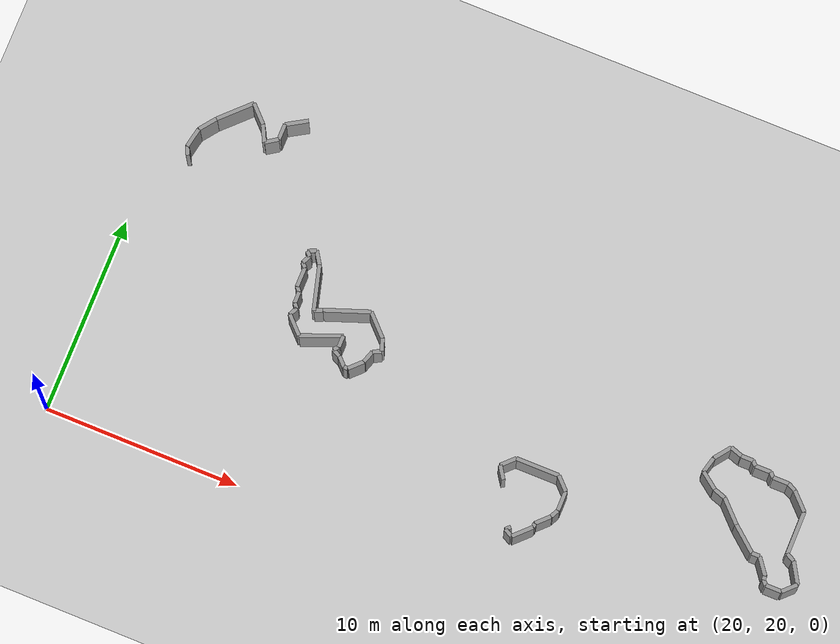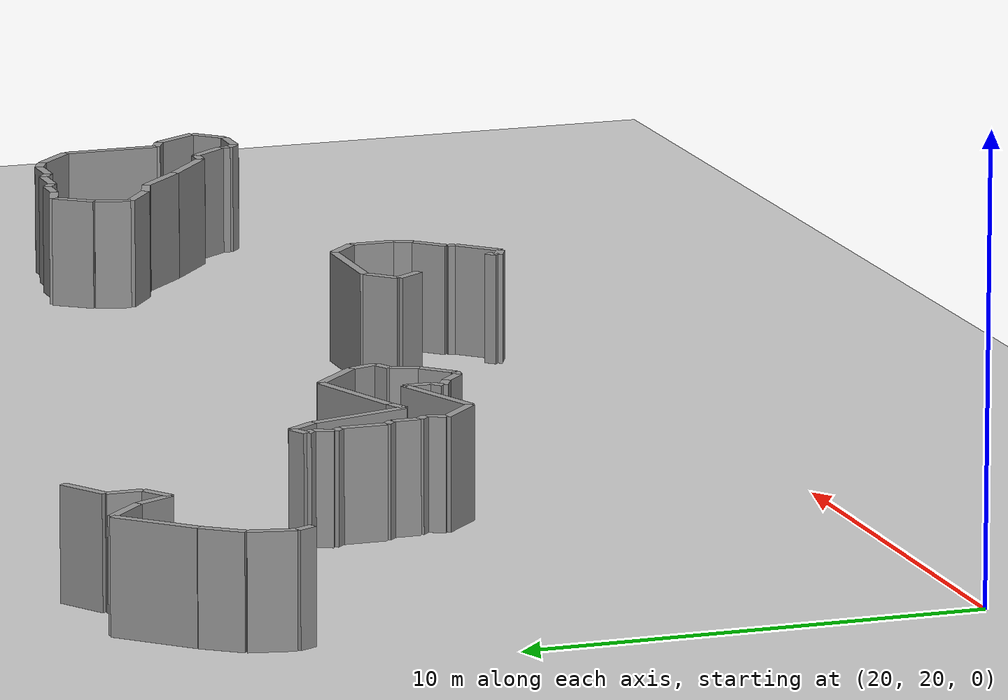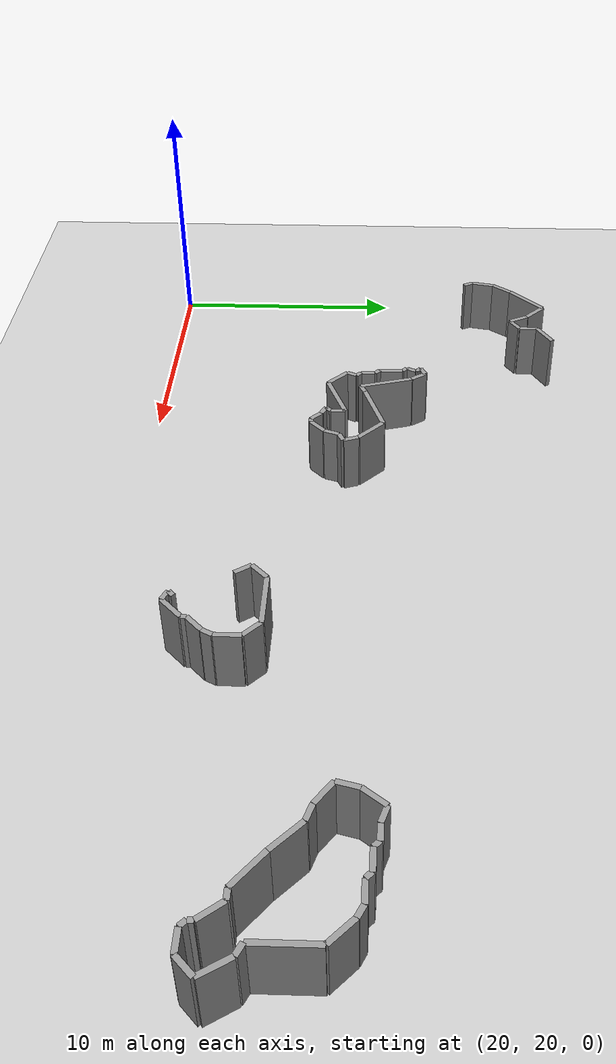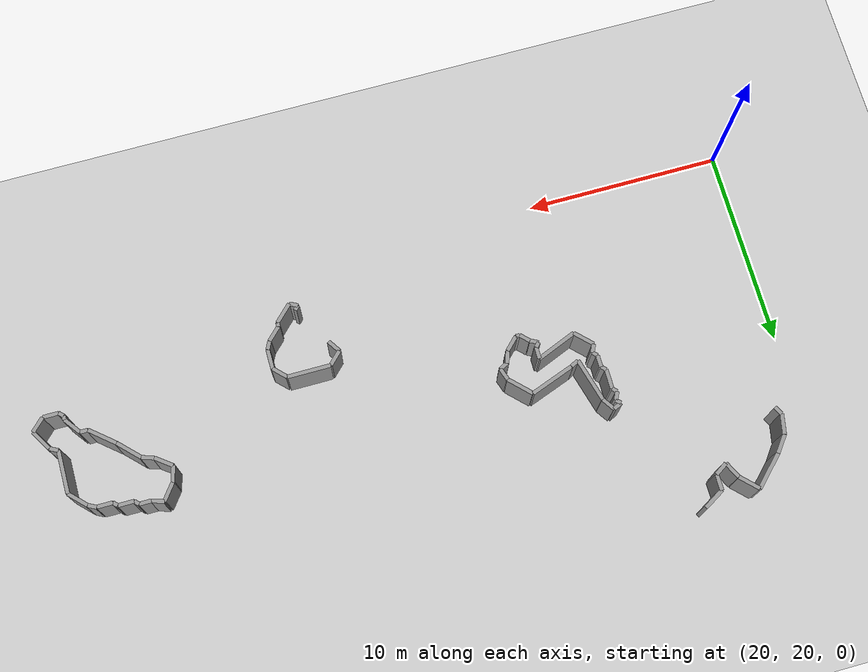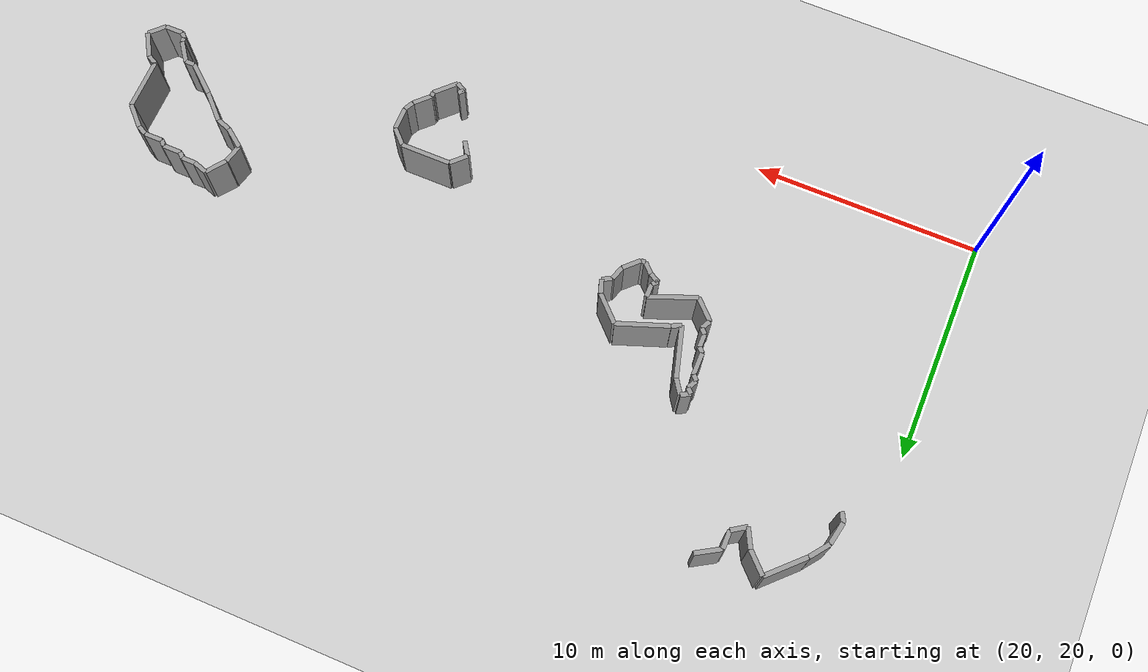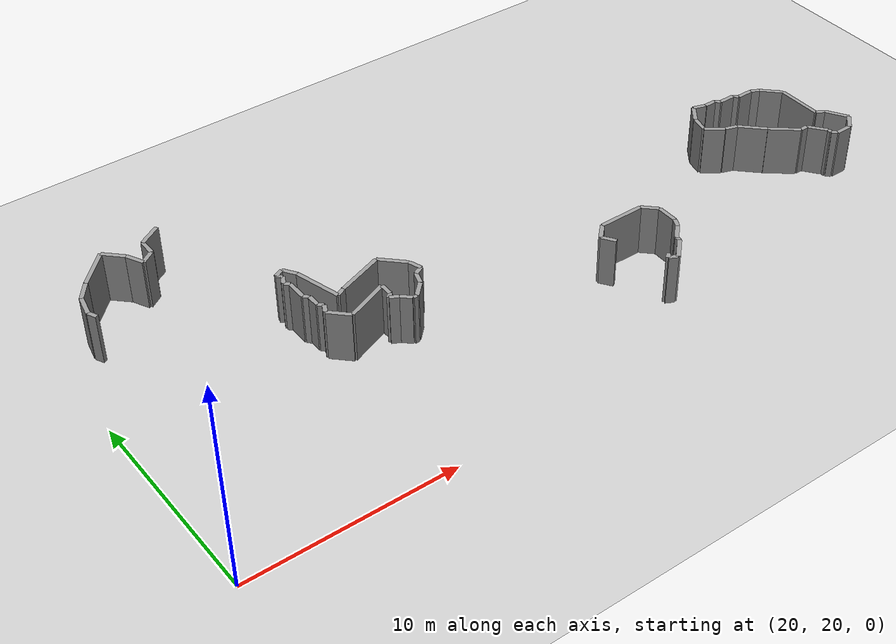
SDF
<sdf version="1.4">
 <world name="1_wall">
  <model name="ground_plane">
   <static>1</static>
   <link name="link">
    <collision name="collision">
     <geometry><plane><normal>0 0 1</normal><size>1000 1000</size></plane></geometry>
     <surface><friction><ode><mu>100</mu><mu2>50</mu2></ode></friction></surface>
    </collision>
    <visual name="visual">
     <cast_shadows>0</cast_shadows>
     <geometry><plane><normal>0 0 1</normal><size>10000 10000</size></plane></geometry>
     <material>
      <script><uri>file://media/materials/scripts/gazebo.material</uri><name>Gazebo/Grey</name></script>
     </material>
    </visual>
    <velocity_decay><linear>0</linear><angular>0</angular></velocity_decay>
   </link>
  </model>
  <model name="Wall_689">
   <static>1</static>
   <link name="Wall_689">
    <collision name="Wall_Collision_689">
     <geometry><box><size>1.16619037897 0.2 2.5</size></box></geometry>
     <pose>0 0 1.25 0 -0 0</pose>
    </collision>
    <visual name="Wall_Visual_689">
     <pose>0 0 1.25 0 -0 0</pose>
     <geometry><box><size>1.16619037897 0.2 2.5</size></box></geometry>
     <material>
      <script><uri>file://media/materials/scripts/gazebo.material</uri><name>Gazebo/Grey</name></script>
     </material>
    </visual>
    <velocity_decay><linear>0</linear><angular>0</angular></velocity_decay>
    <pose>26.1 37.3 0 0 0 -2.60117315332</pose>
   </link>
  </model>
  <model name="Wall_690">
   <static>1</static>
   <link name="Wall_690">
    <collision name="Wall_Collision_690">
     <geometry><box><size>0.8 0.2 2.5</size></box></geometry>
     <pose>0 0 1.25 0 -0 0</pose>
    </collision>
    <visual name="Wall_Visual_690">
     <pose>0 0 1.25 0 -0 0</pose>
     <geometry><box><size>0.8 0.2 2.5</size></box></geometry>
     <material>
      <script><uri>file://media/materials/scripts/gazebo.material</uri><name>Gazebo/Grey</name></script>
     </material>
    </visual>
    <velocity_decay><linear>0</linear><angular>0</angular></velocity_decay>
    <pose>25.6 36.6 0 0 0 -1.57079632679</pose>
   </link>
  </model>
  <model name="Wall_691">
   <static>1</static>
   <link name="Wall_691">
    <collision name="Wall_Collision_691">
     <geometry><box><size>0.721110255093 0.2 2.5</size></box></geometry>
     <pose>0 0 1.25 0 -0 0</pose>
    </collision>
    <visual name="Wall_Visual_691">
     <pose>0 0 1.25 0 -0 0</pose>
     <geometry><box><size>0.721110255093 0.2 2.5</size></box></geometry>
     <material>
      <script><uri>file://media/materials/scripts/gazebo.material</uri><name>Gazebo/Grey</name></script>
     </material>
    </visual>
    <velocity_decay><linear>0</linear><angular>0</angular></velocity_decay>
    <pose>25.3 36.0 0 0 0 -2.55359005004</pose>
   </link>
  </model>
  <model name="Wall_692">
   <static>1</static>
   <link name="Wall_692">
    <collision name="Wall_Collision_692">
     <geometry><box><size>0.894427191 0.2 2.5</size></box></geometry>
     <pose>0 0 1.25 0 -0 0</pose>
    </collision>
    <visual name="Wall_Visual_692">
     <pose>0 0 1.25 0 -0 0</pose>
     <geometry><box><size>0.894427191 0.2 2.5</size></box></geometry>
     <material>
      <script><uri>file://media/materials/scripts/gazebo.material</uri><name>Gazebo/Grey</name></script>
     </material>
    </visual>
    <velocity_decay><linear>0</linear><angular>0</angular></velocity_decay>
    <pose>24.8 36.2 0 0 0 2.0344439358</pose>
   </link>
  </model>
  <model name="Wall_693">
   <static>1</static>
   <link name="Wall_693">
    <collision name="Wall_Collision_693">
     <geometry><box><size>1.1313708499 0.2 2.5</size></box></geometry>
     <pose>0 0 1.25 0 -0 0</pose>
    </collision>
    <visual name="Wall_Visual_693">
     <pose>0 0 1.25 0 -0 0</pose>
     <geometry><box><size>1.1313708499 0.2 2.5</size></box></geometry>
     <material>
      <script><uri>file://media/materials/scripts/gazebo.material</uri><name>Gazebo/Grey</name></script>
     </material>
    </visual>
    <velocity_decay><linear>0</linear><angular>0</angular></velocity_decay>
    <pose>24.2 37.0 0 0 0 2.35619449019</pose>
   </link>
  </model>
  <model name="Wall_694">
   <static>1</static>
   <link name="Wall_694">
    <collision name="Wall_Collision_694">
     <geometry><box><size>1.97989898732 0.2 2.5</size></box></geometry>
     <pose>0 0 1.25 0 -0 0</pose>
    </collision>
    <visual name="Wall_Visual_694">
     <pose>0 0 1.25 0 -0 0</pose>
     <geometry><box><size>1.97989898732 0.2 2.5</size></box></geometry>
     <material>
      <script><uri>file://media/materials/scripts/gazebo.material</uri><name>Gazebo/Grey</name></script>
     </material>
    </visual>
    <velocity_decay><linear>0</linear><angular>0</angular></velocity_decay>
    <pose>23.1 36.7 0 0 0 -2.35619449019</pose>
   </link>
  </model>
  <model name="Wall_695">
   <static>1</static>
   <link name="Wall_695">
    <collision name="Wall_Collision_695">
     <geometry><box><size>1.0 0.2 2.5</size></box></geometry>
     <pose>0 0 1.25 0 -0 0</pose>
    </collision>
    <visual name="Wall_Visual_695">
     <pose>0 0 1.25 0 -0 0</pose>
     <geometry><box><size>1.0 0.2 2.5</size></box></geometry>
     <material>
      <script><uri>file://media/materials/scripts/gazebo.material</uri><name>Gazebo/Grey</name></script>
     </material>
    </visual>
    <velocity_decay><linear>0</linear><angular>0</angular></velocity_decay>
    <pose>22.1 35.6 0 0 0 -2.21429743559</pose>
   </link>
  </model>
  <model name="Wall_696">
   <static>1</static>
   <link name="Wall_696">
    <collision name="Wall_Collision_696">
     <geometry><box><size>1.01980390272 0.2 2.5</size></box></geometry>
     <pose>0 0 1.25 0 -0 0</pose>
    </collision>
    <visual name="Wall_Visual_696">
     <pose>0 0 1.25 0 -0 0</pose>
     <geometry><box><size>1.01980390272 0.2 2.5</size></box></geometry>
     <material>
      <script><uri>file://media/materials/scripts/gazebo.material</uri><name>Gazebo/Grey</name></script>
     </material>
    </visual>
    <velocity_decay><linear>0</linear><angular>0</angular></velocity_decay>
    <pose>21.7 34.7 0 0 0 -1.76819188664</pose>
   </link>
  </model>
  <model name="Wall_697">
   <static>1</static>
   <link name="Wall_697">
    <collision name="Wall_Collision_697">
     <geometry><box><size>0.4472135955 0.2 2.5</size></box></geometry>
     <pose>0 0 1.25 0 -0 0</pose>
    </collision>
    <visual name="Wall_Visual_697">
     <pose>0 0 1.25 0 -0 0</pose>
     <geometry><box><size>0.4472135955 0.2 2.5</size></box></geometry>
     <material>
      <script><uri>file://media/materials/scripts/gazebo.material</uri><name>Gazebo/Grey</name></script>
     </material>
    </visual>
    <velocity_decay><linear>0</linear><angular>0</angular></velocity_decay>
    <pose>21.7 34.0 0 0 0 -1.10714871779</pose>
   </link>
  </model>
  <model name="Wall_698">
   <static>1</static>
   <link name="Wall_698">
    <collision name="Wall_Collision_698">
     <geometry><box><size>0.565685424949 0.2 2.5</size></box></geometry>
     <pose>0 0 1.25 0 -0 0</pose>
    </collision>
    <visual name="Wall_Visual_698">
     <pose>0 0 1.25 0 -0 0</pose>
     <geometry><box><size>0.565685424949 0.2 2.5</size></box></geometry>
     <material>
      <script><uri>file://media/materials/scripts/gazebo.material</uri><name>Gazebo/Grey</name></script>
     </material>
    </visual>
    <velocity_decay><linear>0</linear><angular>0</angular></velocity_decay>
    <pose>32.6 27.2 0 0 0 -0.785398163397</pose>
   </link>
  </model>
  <model name="Wall_699">
   <static>1</static>
   <link name="Wall_699">
    <collision name="Wall_Collision_699">
     <geometry><box><size>0.2 0.2 2.5</size></box></geometry>
     <pose>0 0 1.25 0 -0 0</pose>
    </collision>
    <visual name="Wall_Visual_699">
     <pose>0 0 1.25 0 -0 0</pose>
     <geometry><box><size>0.2 0.2 2.5</size></box></geometry>
     <material>
      <script><uri>file://media/materials/scripts/gazebo.material</uri><name>Gazebo/Grey</name></script>
     </material>
    </visual>
    <velocity_decay><linear>0</linear><angular>0</angular></velocity_decay>
    <pose>32.9 27.0 0 0 0 0.0</pose>
   </link>
  </model>
  <model name="Wall_700">
   <static>1</static>
   <link name="Wall_700">
    <collision name="Wall_Collision_700">
     <geometry><box><size>0.848528137424 0.2 2.5</size></box></geometry>
     <pose>0 0 1.25 0 -0 0</pose>
    </collision>
    <visual name="Wall_Visual_700">
     <pose>0 0 1.25 0 -0 0</pose>
     <geometry><box><size>0.848528137424 0.2 2.5</size></box></geometry>
     <material>
      <script><uri>file://media/materials/scripts/gazebo.material</uri><name>Gazebo/Grey</name></script>
     </material>
    </visual>
    <velocity_decay><linear>0</linear><angular>0</angular></velocity_decay>
    <pose>33.3 27.3 0 0 0 0.785398163397</pose>
   </link>
  </model>
  <model name="Wall_701">
   <static>1</static>
   <link name="Wall_701">
    <collision name="Wall_Collision_701">
     <geometry><box><size>0.632455532034 0.2 2.5</size></box></geometry>
     <pose>0 0 1.25 0 -0 0</pose>
    </collision>
    <visual name="Wall_Visual_701">
     <pose>0 0 1.25 0 -0 0</pose>
     <geometry><box><size>0.632455532034 0.2 2.5</size></box></geometry>
     <material>
      <script><uri>file://media/materials/scripts/gazebo.material</uri><name>Gazebo/Grey</name></script>
     </material>
    </visual>
    <velocity_decay><linear>0</linear><angular>0</angular></velocity_decay>
    <pose>33.7 27.9 0 0 0 1.2490457724</pose>
   </link>
  </model>
  <model name="Wall_702">
   <static>1</static>
   <link name="Wall_702">
    <collision name="Wall_Collision_702">
     <geometry><box><size>0.4472135955 0.2 2.5</size></box></geometry>
     <pose>0 0 1.25 0 -0 0</pose>
    </collision>
    <visual name="Wall_Visual_702">
     <pose>0 0 1.25 0 -0 0</pose>
     <geometry><box><size>0.4472135955 0.2 2.5</size></box></geometry>
     <material>
      <script><uri>file://media/materials/scripts/gazebo.material</uri><name>Gazebo/Grey</name></script>
     </material>
    </visual>
    <velocity_decay><linear>0</linear><angular>0</angular></velocity_decay>
    <pose>34.0 28.3 0 0 0 0.463647609001</pose>
   </link>
  </model>
  <model name="Wall_703">
   <static>1</static>
   <link name="Wall_703">
    <collision name="Wall_Collision_703">
     <geometry><box><size>0.632455532034 0.2 2.5</size></box></geometry>
     <pose>0 0 1.25 0 -0 0</pose>
    </collision>
    <visual name="Wall_Visual_703">
     <pose>0 0 1.25 0 -0 0</pose>
     <geometry><box><size>0.632455532034 0.2 2.5</size></box></geometry>
     <material>
      <script><uri>file://media/materials/scripts/gazebo.material</uri><name>Gazebo/Grey</name></script>
     </material>
    </visual>
    <velocity_decay><linear>0</linear><angular>0</angular></velocity_decay>
    <pose>34.1 28.7 0 0 0 1.89254688119</pose>
   </link>
  </model>
  <model name="Wall_704">
   <static>1</static>
   <link name="Wall_704">
    <collision name="Wall_Collision_704">
     <geometry><box><size>1.41421356237 0.2 2.5</size></box></geometry>
     <pose>0 0 1.25 0 -0 0</pose>
    </collision>
    <visual name="Wall_Visual_704">
     <pose>0 0 1.25 0 -0 0</pose>
     <geometry><box><size>1.41421356237 0.2 2.5</size></box></geometry>
     <material>
      <script><uri>file://media/materials/scripts/gazebo.material</uri><name>Gazebo/Grey</name></script>
     </material>
    </visual>
    <velocity_decay><linear>0</linear><angular>0</angular></velocity_decay>
    <pose>33.5 29.5 0 0 0 2.35619449019</pose>
   </link>
  </model>
  <model name="Wall_705">
   <static>1</static>
   <link name="Wall_705">
    <collision name="Wall_Collision_705">
     <geometry><box><size>2.34093998214 0.2 2.5</size></box></geometry>
     <pose>0 0 1.25 0 -0 0</pose>
    </collision>
    <visual name="Wall_Visual_705">
     <pose>0 0 1.25 0 -0 0</pose>
     <geometry><box><size>2.34093998214 0.2 2.5</size></box></geometry>
     <material>
      <script><uri>file://media/materials/scripts/gazebo.material</uri><name>Gazebo/Grey</name></script>
     </material>
    </visual>
    <velocity_decay><linear>0</linear><angular>0</angular></velocity_decay>
    <pose>31.9 29.6 0 0 0 -2.79282165001</pose>
   </link>
  </model>
  <model name="Wall_706">
   <static>1</static>
   <link name="Wall_706">
    <collision name="Wall_Collision_706">
     <geometry><box><size>0.4472135955 0.2 2.5</size></box></geometry>
     <pose>0 0 1.25 0 -0 0</pose>
    </collision>
    <visual name="Wall_Visual_706">
     <pose>0 0 1.25 0 -0 0</pose>
     <geometry><box><size>0.4472135955 0.2 2.5</size></box></geometry>
     <material>
      <script><uri>file://media/materials/scripts/gazebo.material</uri><name>Gazebo/Grey</name></script>
     </material>
    </visual>
    <velocity_decay><linear>0</linear><angular>0</angular></velocity_decay>
    <pose>30.6 29.1 0 0 0 -2.67794504459</pose>
   </link>
  </model>
  <model name="Wall_707">
   <static>1</static>
   <link name="Wall_707">
    <collision name="Wall_Collision_707">
     <geometry><box><size>2.2803508502 0.2 2.5</size></box></geometry>
     <pose>0 0 1.25 0 -0 0</pose>
    </collision>
    <visual name="Wall_Visual_707">
     <pose>0 0 1.25 0 -0 0</pose>
     <geometry><box><size>2.2803508502 0.2 2.5</size></box></geometry>
     <material>
      <script><uri>file://media/materials/scripts/gazebo.material</uri><name>Gazebo/Grey</name></script>
     </material>
    </visual>
    <velocity_decay><linear>0</linear><angular>0</angular></velocity_decay>
    <pose>30.1 30.1 0 0 0 1.83704837595</pose>
   </link>
  </model>
  <model name="Wall_708">
   <static>1</static>
   <link name="Wall_708">
    <collision name="Wall_Collision_708">
     <geometry><box><size>0.721110255093 0.2 2.5</size></box></geometry>
     <pose>0 0 1.25 0 -0 0</pose>
    </collision>
    <visual name="Wall_Visual_708">
     <pose>0 0 1.25 0 -0 0</pose>
     <geometry><box><size>0.721110255093 0.2 2.5</size></box></geometry>
     <material>
      <script><uri>file://media/materials/scripts/gazebo.material</uri><name>Gazebo/Grey</name></script>
     </material>
    </visual>
    <velocity_decay><linear>0</linear><angular>0</angular></velocity_decay>
    <pose>29.6 31.5 0 0 0 2.15879893034</pose>
   </link>
  </model>
  <model name="Wall_709">
   <static>1</static>
   <link name="Wall_709">
    <collision name="Wall_Collision_709">
     <geometry><box><size>0.4472135955 0.2 2.5</size></box></geometry>
     <pose>0 0 1.25 0 -0 0</pose>
    </collision>
    <visual name="Wall_Visual_709">
     <pose>0 0 1.25 0 -0 0</pose>
     <geometry><box><size>0.4472135955 0.2 2.5</size></box></geometry>
     <material>
      <script><uri>file://media/materials/scripts/gazebo.material</uri><name>Gazebo/Grey</name></script>
     </material>
    </visual>
    <velocity_decay><linear>0</linear><angular>0</angular></velocity_decay>
    <pose>29.2 31.7 0 0 0 -2.67794504459</pose>
   </link>
  </model>
  <model name="Wall_710">
   <static>1</static>
   <link name="Wall_710">
    <collision name="Wall_Collision_710">
     <geometry><box><size>0.282842712475 0.2 2.5</size></box></geometry>
     <pose>0 0 1.25 0 -0 0</pose>
    </collision>
    <visual name="Wall_Visual_710">
     <pose>0 0 1.25 0 -0 0</pose>
     <geometry><box><size>0.282842712475 0.2 2.5</size></box></geometry>
     <material>
      <script><uri>file://media/materials/scripts/gazebo.material</uri><name>Gazebo/Grey</name></script>
     </material>
    </visual>
    <velocity_decay><linear>0</linear><angular>0</angular></velocity_decay>
    <pose>29.1 31.5 0 0 0 -0.785398163397</pose>
   </link>
  </model>
  <model name="Wall_711">
   <static>1</static>
   <link name="Wall_711">
    <collision name="Wall_Collision_711">
     <geometry><box><size>0.4472135955 0.2 2.5</size></box></geometry>
     <pose>0 0 1.25 0 -0 0</pose>
    </collision>
    <visual name="Wall_Visual_711">
     <pose>0 0 1.25 0 -0 0</pose>
     <geometry><box><size>0.4472135955 0.2 2.5</size></box></geometry>
     <material>
      <script><uri>file://media/materials/scripts/gazebo.material</uri><name>Gazebo/Grey</name></script>
     </material>
    </visual>
    <velocity_decay><linear>0</linear><angular>0</angular></velocity_decay>
    <pose>29.1 31.2 0 0 0 -2.0344439358</pose>
   </link>
  </model>
  <model name="Wall_712">
   <static>1</static>
   <link name="Wall_712">
    <collision name="Wall_Collision_712">
     <geometry><box><size>0.282842712475 0.2 2.5</size></box></geometry>
     <pose>0 0 1.25 0 -0 0</pose>
    </collision>
    <visual name="Wall_Visual_712">
     <pose>0 0 1.25 0 -0 0</pose>
     <geometry><box><size>0.282842712475 0.2 2.5</size></box></geometry>
     <material>
      <script><uri>file://media/materials/scripts/gazebo.material</uri><name>Gazebo/Grey</name></script>
     </material>
    </visual>
    <velocity_decay><linear>0</linear><angular>0</angular></velocity_decay>
    <pose>29.1 30.9 0 0 0 -0.785398163397</pose>
   </link>
  </model>
  <model name="Wall_713">
   <static>1</static>
   <link name="Wall_713">
    <collision name="Wall_Collision_713">
     <geometry><box><size>1.0 0.2 2.5</size></box></geometry>
     <pose>0 0 1.25 0 -0 0</pose>
    </collision>
    <visual name="Wall_Visual_713">
     <pose>0 0 1.25 0 -0 0</pose>
     <geometry><box><size>1.0 0.2 2.5</size></box></geometry>
     <material>
      <script><uri>file://media/materials/scripts/gazebo.material</uri><name>Gazebo/Grey</name></script>
     </material>
    </visual>
    <velocity_decay><linear>0</linear><angular>0</angular></velocity_decay>
    <pose>29.2 30.3 0 0 0 -1.57079632679</pose>
   </link>
  </model>
  <model name="Wall_714">
   <static>1</static>
   <link name="Wall_714">
    <collision name="Wall_Collision_714">
     <geometry><box><size>0.282842712475 0.2 2.5</size></box></geometry>
     <pose>0 0 1.25 0 -0 0</pose>
    </collision>
    <visual name="Wall_Visual_714">
     <pose>0 0 1.25 0 -0 0</pose>
     <geometry><box><size>0.282842712475 0.2 2.5</size></box></geometry>
     <material>
      <script><uri>file://media/materials/scripts/gazebo.material</uri><name>Gazebo/Grey</name></script>
     </material>
    </visual>
    <velocity_decay><linear>0</linear><angular>0</angular></velocity_decay>
    <pose>29.3 29.7 0 0 0 -0.785398163397</pose>
   </link>
  </model>
  <model name="Wall_715">
   <static>1</static>
   <link name="Wall_715">
    <collision name="Wall_Collision_715">
     <geometry><box><size>0.6 0.2 2.5</size></box></geometry>
     <pose>0 0 1.25 0 -0 0</pose>
    </collision>
    <visual name="Wall_Visual_715">
     <pose>0 0 1.25 0 -0 0</pose>
     <geometry><box><size>0.6 0.2 2.5</size></box></geometry>
     <material>
      <script><uri>file://media/materials/scripts/gazebo.material</uri><name>Gazebo/Grey</name></script>
     </material>
    </visual>
    <velocity_decay><linear>0</linear><angular>0</angular></velocity_decay>
    <pose>29.4 29.3 0 0 0 -1.57079632679</pose>
   </link>
  </model>
  <model name="Wall_716">
   <static>1</static>
   <link name="Wall_716">
    <collision name="Wall_Collision_716">
     <geometry><box><size>0.282842712475 0.2 2.5</size></box></geometry>
     <pose>0 0 1.25 0 -0 0</pose>
    </collision>
    <visual name="Wall_Visual_716">
     <pose>0 0 1.25 0 -0 0</pose>
     <geometry><box><size>0.282842712475 0.2 2.5</size></box></geometry>
     <material>
      <script><uri>file://media/materials/scripts/gazebo.material</uri><name>Gazebo/Grey</name></script>
     </material>
    </visual>
    <velocity_decay><linear>0</linear><angular>0</angular></velocity_decay>
    <pose>29.5 28.9 0 0 0 -0.785398163397</pose>
   </link>
  </model>
  <model name="Wall_717">
   <static>1</static>
   <link name="Wall_717">
    <collision name="Wall_Collision_717">
     <geometry><box><size>0.4472135955 0.2 2.5</size></box></geometry>
     <pose>0 0 1.25 0 -0 0</pose>
    </collision>
    <visual name="Wall_Visual_717">
     <pose>0 0 1.25 0 -0 0</pose>
     <geometry><box><size>0.4472135955 0.2 2.5</size></box></geometry>
     <material>
      <script><uri>file://media/materials/scripts/gazebo.material</uri><name>Gazebo/Grey</name></script>
     </material>
    </visual>
    <velocity_decay><linear>0</linear><angular>0</angular></velocity_decay>
    <pose>29.5 28.6 0 0 0 -2.0344439358</pose>
   </link>
  </model>
  <model name="Wall_718">
   <static>1</static>
   <link name="Wall_718">
    <collision name="Wall_Collision_718">
     <geometry><box><size>1.1313708499 0.2 2.5</size></box></geometry>
     <pose>0 0 1.25 0 -0 0</pose>
    </collision>
    <visual name="Wall_Visual_718">
     <pose>0 0 1.25 0 -0 0</pose>
     <geometry><box><size>1.1313708499 0.2 2.5</size></box></geometry>
     <material>
      <script><uri>file://media/materials/scripts/gazebo.material</uri><name>Gazebo/Grey</name></script>
     </material>
    </visual>
    <velocity_decay><linear>0</linear><angular>0</angular></velocity_decay>
    <pose>29.8 28.0 0 0 0 -0.785398163397</pose>
   </link>
  </model>
  <model name="Wall_719">
   <static>1</static>
   <link name="Wall_719">
    <collision name="Wall_Collision_719">
     <geometry><box><size>2.15406592285 0.2 2.5</size></box></geometry>
     <pose>0 0 1.25 0 -0 0</pose>
    </collision>
    <visual name="Wall_Visual_719">
     <pose>0 0 1.25 0 -0 0</pose>
     <geometry><box><size>2.15406592285 0.2 2.5</size></box></geometry>
     <material>
      <script><uri>file://media/materials/scripts/gazebo.material</uri><name>Gazebo/Grey</name></script>
     </material>
    </visual>
    <velocity_decay><linear>0</linear><angular>0</angular></velocity_decay>
    <pose>31.2 28.0 0 0 0 0.380506377112</pose>
   </link>
  </model>
  <model name="Wall_720">
   <static>1</static>
   <link name="Wall_720">
    <collision name="Wall_Collision_720">
     <geometry><box><size>0.6 0.2 2.5</size></box></geometry>
     <pose>0 0 1.25 0 -0 0</pose>
    </collision>
    <visual name="Wall_Visual_720">
     <pose>0 0 1.25 0 -0 0</pose>
     <geometry><box><size>0.6 0.2 2.5</size></box></geometry>
     <material>
      <script><uri>file://media/materials/scripts/gazebo.material</uri><name>Gazebo/Grey</name></script>
     </material>
    </visual>
    <velocity_decay><linear>0</linear><angular>0</angular></velocity_decay>
    <pose>32.2 28.1 0 0 0 -1.57079632679</pose>
   </link>
  </model>
  <model name="Wall_721">
   <static>1</static>
   <link name="Wall_721">
    <collision name="Wall_Collision_721">
     <geometry><box><size>0.282842712475 0.2 2.5</size></box></geometry>
     <pose>0 0 1.25 0 -0 0</pose>
    </collision>
    <visual name="Wall_Visual_721">
     <pose>0 0 1.25 0 -0 0</pose>
     <geometry><box><size>0.282842712475 0.2 2.5</size></box></geometry>
     <material>
      <script><uri>file://media/materials/scripts/gazebo.material</uri><name>Gazebo/Grey</name></script>
     </material>
    </visual>
    <velocity_decay><linear>0</linear><angular>0</angular></velocity_decay>
    <pose>32.1 27.7 0 0 0 -2.35619449019</pose>
   </link>
  </model>
  <model name="Wall_722">
   <static>1</static>
   <link name="Wall_722">
    <collision name="Wall_Collision_722">
     <geometry><box><size>0.4472135955 0.2 2.5</size></box></geometry>
     <pose>0 0 1.25 0 -0 0</pose>
    </collision>
    <visual name="Wall_Visual_722">
     <pose>0 0 1.25 0 -0 0</pose>
     <geometry><box><size>0.4472135955 0.2 2.5</size></box></geometry>
     <material>
      <script><uri>file://media/materials/scripts/gazebo.material</uri><name>Gazebo/Grey</name></script>
     </material>
    </visual>
    <velocity_decay><linear>0</linear><angular>0</angular></velocity_decay>
    <pose>32.2 27.5 0 0 0 -0.463647609001</pose>
   </link>
  </model>
  <model name="Wall_723">
   <static>1</static>
   <link name="Wall_723">
    <collision name="Wall_Collision_723">
     <geometry><box><size>0.2 0.2 2.5</size></box></geometry>
     <pose>0 0 1.25 0 -0 0</pose>
    </collision>
    <visual name="Wall_Visual_723">
     <pose>0 0 1.25 0 -0 0</pose>
     <geometry><box><size>0.2 0.2 2.5</size></box></geometry>
     <material>
      <script><uri>file://media/materials/scripts/gazebo.material</uri><name>Gazebo/Grey</name></script>
     </material>
    </visual>
    <velocity_decay><linear>0</linear><angular>0</angular></velocity_decay>
    <pose>55.4 25.1 0 0 0 -1.57079632679</pose>
   </link>
  </model>
  <model name="Wall_724">
   <static>1</static>
   <link name="Wall_724">
    <collision name="Wall_Collision_724">
     <geometry><box><size>0.282842712475 0.2 2.5</size></box></geometry>
     <pose>0 0 1.25 0 -0 0</pose>
    </collision>
    <visual name="Wall_Visual_724">
     <pose>0 0 1.25 0 -0 0</pose>
     <geometry><box><size>0.282842712475 0.2 2.5</size></box></geometry>
     <material>
      <script><uri>file://media/materials/scripts/gazebo.material</uri><name>Gazebo/Grey</name></script>
     </material>
    </visual>
    <velocity_decay><linear>0</linear><angular>0</angular></velocity_decay>
    <pose>55.5 24.9 0 0 0 -0.785398163397</pose>
   </link>
  </model>
  <model name="Wall_725">
   <static>1</static>
   <link name="Wall_725">
    <collision name="Wall_Collision_725">
     <geometry><box><size>0.8 0.2 2.5</size></box></geometry>
     <pose>0 0 1.25 0 -0 0</pose>
    </collision>
    <visual name="Wall_Visual_725">
     <pose>0 0 1.25 0 -0 0</pose>
     <geometry><box><size>0.8 0.2 2.5</size></box></geometry>
     <material>
      <script><uri>file://media/materials/scripts/gazebo.material</uri><name>Gazebo/Grey</name></script>
     </material>
    </visual>
    <velocity_decay><linear>0</linear><angular>0</angular></velocity_decay>
    <pose>56.0 24.8 0 0 0 0.0</pose>
   </link>
  </model>
  <model name="Wall_726">
   <static>1</static>
   <link name="Wall_726">
    <collision name="Wall_Collision_726">
     <geometry><box><size>0.848528137424 0.2 2.5</size></box></geometry>
     <pose>0 0 1.25 0 -0 0</pose>
    </collision>
    <visual name="Wall_Visual_726">
     <pose>0 0 1.25 0 -0 0</pose>
     <geometry><box><size>0.848528137424 0.2 2.5</size></box></geometry>
     <material>
      <script><uri>file://media/materials/scripts/gazebo.material</uri><name>Gazebo/Grey</name></script>
     </material>
    </visual>
    <velocity_decay><linear>0</linear><angular>0</angular></velocity_decay>
    <pose>56.7 25.1 0 0 0 0.785398163397</pose>
   </link>
  </model>
  <model name="Wall_727">
   <static>1</static>
   <link name="Wall_727">
    <collision name="Wall_Collision_727">
     <geometry><box><size>1.16619037897 0.2 2.5</size></box></geometry>
     <pose>0 0 1.25 0 -0 0</pose>
    </collision>
    <visual name="Wall_Visual_727">
     <pose>0 0 1.25 0 -0 0</pose>
     <geometry><box><size>1.16619037897 0.2 2.5</size></box></geometry>
     <material>
      <script><uri>file://media/materials/scripts/gazebo.material</uri><name>Gazebo/Grey</name></script>
     </material>
    </visual>
    <velocity_decay><linear>0</linear><angular>0</angular></velocity_decay>
    <pose>56.7 25.9 0 0 0 2.11121582707</pose>
   </link>
  </model>
  <model name="Wall_728">
   <static>1</static>
   <link name="Wall_728">
    <collision name="Wall_Collision_728">
     <geometry><box><size>0.4472135955 0.2 2.5</size></box></geometry>
     <pose>0 0 1.25 0 -0 0</pose>
    </collision>
    <visual name="Wall_Visual_728">
     <pose>0 0 1.25 0 -0 0</pose>
     <geometry><box><size>0.4472135955 0.2 2.5</size></box></geometry>
     <material>
      <script><uri>file://media/materials/scripts/gazebo.material</uri><name>Gazebo/Grey</name></script>
     </material>
    </visual>
    <velocity_decay><linear>0</linear><angular>0</angular></velocity_decay>
    <pose>56.2 26.5 0 0 0 2.67794504459</pose>
   </link>
  </model>
  <model name="Wall_729">
   <static>1</static>
   <link name="Wall_729">
    <collision name="Wall_Collision_729">
     <geometry><box><size>2.2 0.2 2.5</size></box></geometry>
     <pose>0 0 1.25 0 -0 0</pose>
    </collision>
    <visual name="Wall_Visual_729">
     <pose>0 0 1.25 0 -0 0</pose>
     <geometry><box><size>2.2 0.2 2.5</size></box></geometry>
     <material>
      <script><uri>file://media/materials/scripts/gazebo.material</uri><name>Gazebo/Grey</name></script>
     </material>
    </visual>
    <velocity_decay><linear>0</linear><angular>0</angular></velocity_decay>
    <pose>56.0 27.7 0 0 0 1.57079632679</pose>
   </link>
  </model>
  <model name="Wall_730">
   <static>1</static>
   <link name="Wall_730">
    <collision name="Wall_Collision_730">
     <geometry><box><size>1.1313708499 0.2 2.5</size></box></geometry>
     <pose>0 0 1.25 0 -0 0</pose>
    </collision>
    <visual name="Wall_Visual_730">
     <pose>0 0 1.25 0 -0 0</pose>
     <geometry><box><size>1.1313708499 0.2 2.5</size></box></geometry>
     <material>
      <script><uri>file://media/materials/scripts/gazebo.material</uri><name>Gazebo/Grey</name></script>
     </material>
    </visual>
    <velocity_decay><linear>0</linear><angular>0</angular></velocity_decay>
    <pose>55.6 29.2 0 0 0 2.35619449019</pose>
   </link>
  </model>
  <model name="Wall_731">
   <static>1</static>
   <link name="Wall_731">
    <collision name="Wall_Collision_731">
     <geometry><box><size>0.4472135955 0.2 2.5</size></box></geometry>
     <pose>0 0 1.25 0 -0 0</pose>
    </collision>
    <visual name="Wall_Visual_731">
     <pose>0 0 1.25 0 -0 0</pose>
     <geometry><box><size>0.4472135955 0.2 2.5</size></box></geometry>
     <material>
      <script><uri>file://media/materials/scripts/gazebo.material</uri><name>Gazebo/Grey</name></script>
     </material>
    </visual>
    <velocity_decay><linear>0</linear><angular>0</angular></velocity_decay>
    <pose>55.0 29.7 0 0 0 2.67794504459</pose>
   </link>
  </model>
  <model name="Wall_732">
   <static>1</static>
   <link name="Wall_732">
    <collision name="Wall_Collision_732">
     <geometry><box><size>0.8 0.2 2.5</size></box></geometry>
     <pose>0 0 1.25 0 -0 0</pose>
    </collision>
    <visual name="Wall_Visual_732">
     <pose>0 0 1.25 0 -0 0</pose>
     <geometry><box><size>0.8 0.2 2.5</size></box></geometry>
     <material>
      <script><uri>file://media/materials/scripts/gazebo.material</uri><name>Gazebo/Grey</name></script>
     </material>
    </visual>
    <velocity_decay><linear>0</linear><angular>0</angular></velocity_decay>
    <pose>54.4 29.8 0 0 0 3.14159265359</pose>
   </link>
  </model>
  <model name="Wall_733">
   <static>1</static>
   <link name="Wall_733">
    <collision name="Wall_Collision_733">
     <geometry><box><size>0.282842712475 0.2 2.5</size></box></geometry>
     <pose>0 0 1.25 0 -0 0</pose>
    </collision>
    <visual name="Wall_Visual_733">
     <pose>0 0 1.25 0 -0 0</pose>
     <geometry><box><size>0.282842712475 0.2 2.5</size></box></geometry>
     <material>
      <script><uri>file://media/materials/scripts/gazebo.material</uri><name>Gazebo/Grey</name></script>
     </material>
    </visual>
    <velocity_decay><linear>0</linear><angular>0</angular></velocity_decay>
    <pose>53.9 29.9 0 0 0 2.35619449019</pose>
   </link>
  </model>
  <model name="Wall_734">
   <static>1</static>
   <link name="Wall_734">
    <collision name="Wall_Collision_734">
     <geometry><box><size>0.8 0.2 2.5</size></box></geometry>
     <pose>0 0 1.25 0 -0 0</pose>
    </collision>
    <visual name="Wall_Visual_734">
     <pose>0 0 1.25 0 -0 0</pose>
     <geometry><box><size>0.8 0.2 2.5</size></box></geometry>
     <material>
      <script><uri>file://media/materials/scripts/gazebo.material</uri><name>Gazebo/Grey</name></script>
     </material>
    </visual>
    <velocity_decay><linear>0</linear><angular>0</angular></velocity_decay>
    <pose>53.4 30.0 0 0 0 3.14159265359</pose>
   </link>
  </model>
  <model name="Wall_735">
   <static>1</static>
   <link name="Wall_735">
    <collision name="Wall_Collision_735">
     <geometry><box><size>0.282842712475 0.2 2.5</size></box></geometry>
     <pose>0 0 1.25 0 -0 0</pose>
    </collision>
    <visual name="Wall_Visual_735">
     <pose>0 0 1.25 0 -0 0</pose>
     <geometry><box><size>0.282842712475 0.2 2.5</size></box></geometry>
     <material>
      <script><uri>file://media/materials/scripts/gazebo.material</uri><name>Gazebo/Grey</name></script>
     </material>
    </visual>
    <velocity_decay><linear>0</linear><angular>0</angular></velocity_decay>
    <pose>52.9 30.1 0 0 0 2.35619449019</pose>
   </link>
  </model>
  <model name="Wall_736">
   <static>1</static>
   <link name="Wall_736">
    <collision name="Wall_Collision_736">
     <geometry><box><size>0.6 0.2 2.5</size></box></geometry>
     <pose>0 0 1.25 0 -0 0</pose>
    </collision>
    <visual name="Wall_Visual_736">
     <pose>0 0 1.25 0 -0 0</pose>
     <geometry><box><size>0.6 0.2 2.5</size></box></geometry>
     <material>
      <script><uri>file://media/materials/scripts/gazebo.material</uri><name>Gazebo/Grey</name></script>
     </material>
    </visual>
    <velocity_decay><linear>0</linear><angular>0</angular></velocity_decay>
    <pose>52.5 30.2 0 0 0 3.14159265359</pose>
   </link>
  </model>
  <model name="Wall_737">
   <static>1</static>
   <link name="Wall_737">
    <collision name="Wall_Collision_737">
     <geometry><box><size>0.632455532034 0.2 2.5</size></box></geometry>
     <pose>0 0 1.25 0 -0 0</pose>
    </collision>
    <visual name="Wall_Visual_737">
     <pose>0 0 1.25 0 -0 0</pose>
     <geometry><box><size>0.632455532034 0.2 2.5</size></box></geometry>
     <material>
      <script><uri>file://media/materials/scripts/gazebo.material</uri><name>Gazebo/Grey</name></script>
     </material>
    </visual>
    <velocity_decay><linear>0</linear><angular>0</angular></velocity_decay>
    <pose>51.9 30.3 0 0 0 2.81984209919</pose>
   </link>
  </model>
  <model name="Wall_738">
   <static>1</static>
   <link name="Wall_738">
    <collision name="Wall_Collision_738">
     <geometry><box><size>1.0 0.2 2.5</size></box></geometry>
     <pose>0 0 1.25 0 -0 0</pose>
    </collision>
    <visual name="Wall_Visual_738">
     <pose>0 0 1.25 0 -0 0</pose>
     <geometry><box><size>1.0 0.2 2.5</size></box></geometry>
     <material>
      <script><uri>file://media/materials/scripts/gazebo.material</uri><name>Gazebo/Grey</name></script>
     </material>
    </visual>
    <velocity_decay><linear>0</linear><angular>0</angular></velocity_decay>
    <pose>51.3 30.0 0 0 0 -2.21429743559</pose>
   </link>
  </model>
  <model name="Wall_739">
   <static>1</static>
   <link name="Wall_739">
    <collision name="Wall_Collision_739">
     <geometry><box><size>0.824621125124 0.2 2.5</size></box></geometry>
     <pose>0 0 1.25 0 -0 0</pose>
    </collision>
    <visual name="Wall_Visual_739">
     <pose>0 0 1.25 0 -0 0</pose>
     <geometry><box><size>0.824621125124 0.2 2.5</size></box></geometry>
     <material>
      <script><uri>file://media/materials/scripts/gazebo.material</uri><name>Gazebo/Grey</name></script>
     </material>
    </visual>
    <velocity_decay><linear>0</linear><angular>0</angular></velocity_decay>
    <pose>50.9 29.2 0 0 0 -1.81577498992</pose>
   </link>
  </model>
  <model name="Wall_740">
   <static>1</static>
   <link name="Wall_740">
    <collision name="Wall_Collision_740">
     <geometry><box><size>1.0 0.2 2.5</size></box></geometry>
     <pose>0 0 1.25 0 -0 0</pose>
    </collision>
    <visual name="Wall_Visual_740">
     <pose>0 0 1.25 0 -0 0</pose>
     <geometry><box><size>1.0 0.2 2.5</size></box></geometry>
     <material>
      <script><uri>file://media/materials/scripts/gazebo.material</uri><name>Gazebo/Grey</name></script>
     </material>
    </visual>
    <velocity_decay><linear>0</linear><angular>0</angular></velocity_decay>
    <pose>51.2 28.5 0 0 0 -0.643501108793</pose>
   </link>
  </model>
  <model name="Wall_741">
   <static>1</static>
   <link name="Wall_741">
    <collision name="Wall_Collision_741">
     <geometry><box><size>0.632455532034 0.2 2.5</size></box></geometry>
     <pose>0 0 1.25 0 -0 0</pose>
    </collision>
    <visual name="Wall_Visual_741">
     <pose>0 0 1.25 0 -0 0</pose>
     <geometry><box><size>0.632455532034 0.2 2.5</size></box></geometry>
     <material>
      <script><uri>file://media/materials/scripts/gazebo.material</uri><name>Gazebo/Grey</name></script>
     </material>
    </visual>
    <velocity_decay><linear>0</linear><angular>0</angular></velocity_decay>
    <pose>51.9 28.1 0 0 0 -0.321750554397</pose>
   </link>
  </model>
  <model name="Wall_742">
   <static>1</static>
   <link name="Wall_742">
    <collision name="Wall_Collision_742">
     <geometry><box><size>1.41421356237 0.2 2.5</size></box></geometry>
     <pose>0 0 1.25 0 -0 0</pose>
    </collision>
    <visual name="Wall_Visual_742">
     <pose>0 0 1.25 0 -0 0</pose>
     <geometry><box><size>1.41421356237 0.2 2.5</size></box></geometry>
     <material>
      <script><uri>file://media/materials/scripts/gazebo.material</uri><name>Gazebo/Grey</name></script>
     </material>
    </visual>
    <velocity_decay><linear>0</linear><angular>0</angular></velocity_decay>
    <pose>52.7 27.5 0 0 0 -0.785398163397</pose>
   </link>
  </model>
  <model name="Wall_743">
   <static>1</static>
   <link name="Wall_743">
    <collision name="Wall_Collision_743">
     <geometry><box><size>1.56204993518 0.2 2.5</size></box></geometry>
     <pose>0 0 1.25 0 -0 0</pose>
    </collision>
    <visual name="Wall_Visual_743">
     <pose>0 0 1.25 0 -0 0</pose>
     <geometry><box><size>1.56204993518 0.2 2.5</size></box></geometry>
     <material>
      <script><uri>file://media/materials/scripts/gazebo.material</uri><name>Gazebo/Grey</name></script>
     </material>
    </visual>
    <velocity_decay><linear>0</linear><angular>0</angular></velocity_decay>
    <pose>53.8 26.5 0 0 0 -0.694738276197</pose>
   </link>
  </model>
  <model name="Wall_744">
   <static>1</static>
   <link name="Wall_744">
    <collision name="Wall_Collision_744">
     <geometry><box><size>0.4 0.2 2.5</size></box></geometry>
     <pose>0 0 1.25 0 -0 0</pose>
    </collision>
    <visual name="Wall_Visual_744">
     <pose>0 0 1.25 0 -0 0</pose>
     <geometry><box><size>0.4 0.2 2.5</size></box></geometry>
     <material>
      <script><uri>file://media/materials/scripts/gazebo.material</uri><name>Gazebo/Grey</name></script>
     </material>
    </visual>
    <velocity_decay><linear>0</linear><angular>0</angular></velocity_decay>
    <pose>54.6 26.0 0 0 0 0.0</pose>
   </link>
  </model>
  <model name="Wall_745">
   <static>1</static>
   <link name="Wall_745">
    <collision name="Wall_Collision_745">
     <geometry><box><size>1.0 0.2 2.5</size></box></geometry>
     <pose>0 0 1.25 0 -0 0</pose>
    </collision>
    <visual name="Wall_Visual_745">
     <pose>0 0 1.25 0 -0 0</pose>
     <geometry><box><size>1.0 0.2 2.5</size></box></geometry>
     <material>
      <script><uri>file://media/materials/scripts/gazebo.material</uri><name>Gazebo/Grey</name></script>
     </material>
    </visual>
    <velocity_decay><linear>0</linear><angular>0</angular></velocity_decay>
    <pose>55.1 25.6 0 0 0 -0.927295218002</pose>
   </link>
  </model>
  <model name="Wall_746">
   <static>1</static>
   <link name="Wall_746">
    <collision name="Wall_Collision_746">
     <geometry><box><size>0.282842712475 0.2 2.5</size></box></geometry>
     <pose>0 0 1.25 0 -0 0</pose>
    </collision>
    <visual name="Wall_Visual_746">
     <pose>0 0 1.25 0 -0 0</pose>
     <geometry><box><size>0.282842712475 0.2 2.5</size></box></geometry>
     <material>
      <script><uri>file://media/materials/scripts/gazebo.material</uri><name>Gazebo/Grey</name></script>
     </material>
    </visual>
    <velocity_decay><linear>0</linear><angular>0</angular></velocity_decay>
    <pose>43.1 22.7 0 0 0 -2.35619449019</pose>
   </link>
  </model>
  <model name="Wall_747">
   <static>1</static>
   <link name="Wall_747">
    <collision name="Wall_Collision_747">
     <geometry><box><size>0.4472135955 0.2 2.5</size></box></geometry>
     <pose>0 0 1.25 0 -0 0</pose>
    </collision>
    <visual name="Wall_Visual_747">
     <pose>0 0 1.25 0 -0 0</pose>
     <geometry><box><size>0.4472135955 0.2 2.5</size></box></geometry>
     <material>
      <script><uri>file://media/materials/scripts/gazebo.material</uri><name>Gazebo/Grey</name></script>
     </material>
    </visual>
    <velocity_decay><linear>0</linear><angular>0</angular></velocity_decay>
    <pose>43.2 22.5 0 0 0 -0.463647609001</pose>
   </link>
  </model>
  <model name="Wall_748">
   <static>1</static>
   <link name="Wall_748">
    <collision name="Wall_Collision_748">
     <geometry><box><size>1.1313708499 0.2 2.5</size></box></geometry>
     <pose>0 0 1.25 0 -0 0</pose>
    </collision>
    <visual name="Wall_Visual_748">
     <pose>0 0 1.25 0 -0 0</pose>
     <geometry><box><size>1.1313708499 0.2 2.5</size></box></geometry>
     <material>
      <script><uri>file://media/materials/scripts/gazebo.material</uri><name>Gazebo/Grey</name></script>
     </material>
    </visual>
    <velocity_decay><linear>0</linear><angular>0</angular></velocity_decay>
    <pose>43.8 22.8 0 0 0 0.785398163397</pose>
   </link>
  </model>
  <model name="Wall_749">
   <static>1</static>
   <link name="Wall_749">
    <collision name="Wall_Collision_749">
     <geometry><box><size>0.2 0.2 2.5</size></box></geometry>
     <pose>0 0 1.25 0 -0 0</pose>
    </collision>
    <visual name="Wall_Visual_749">
     <pose>0 0 1.25 0 -0 0</pose>
     <geometry><box><size>0.2 0.2 2.5</size></box></geometry>
     <material>
      <script><uri>file://media/materials/scripts/gazebo.material</uri><name>Gazebo/Grey</name></script>
     </material>
    </visual>
    <velocity_decay><linear>0</linear><angular>0</angular></velocity_decay>
    <pose>44.2 23.3 0 0 0 1.57079632679</pose>
   </link>
  </model>
  <model name="Wall_750">
   <static>1</static>
   <link name="Wall_750">
    <collision name="Wall_Collision_750">
     <geometry><box><size>0.848528137424 0.2 2.5</size></box></geometry>
     <pose>0 0 1.25 0 -0 0</pose>
    </collision>
    <visual name="Wall_Visual_750">
     <pose>0 0 1.25 0 -0 0</pose>
     <geometry><box><size>0.848528137424 0.2 2.5</size></box></geometry>
     <material>
      <script><uri>file://media/materials/scripts/gazebo.material</uri><name>Gazebo/Grey</name></script>
     </material>
    </visual>
    <velocity_decay><linear>0</linear><angular>0</angular></velocity_decay>
    <pose>44.5 23.7 0 0 0 0.785398163397</pose>
   </link>
  </model>
  <model name="Wall_751">
   <static>1</static>
   <link name="Wall_751">
    <collision name="Wall_Collision_751">
     <geometry><box><size>0.4472135955 0.2 2.5</size></box></geometry>
     <pose>0 0 1.25 0 -0 0</pose>
    </collision>
    <visual name="Wall_Visual_751">
     <pose>0 0 1.25 0 -0 0</pose>
     <geometry><box><size>0.4472135955 0.2 2.5</size></box></geometry>
     <material>
      <script><uri>file://media/materials/scripts/gazebo.material</uri><name>Gazebo/Grey</name></script>
     </material>
    </visual>
    <velocity_decay><linear>0</linear><angular>0</angular></velocity_decay>
    <pose>44.9 24.2 0 0 0 1.10714871779</pose>
   </link>
  </model>
  <model name="Wall_752">
   <static>1</static>
   <link name="Wall_752">
    <collision name="Wall_Collision_752">
     <geometry><box><size>1.0 0.2 2.5</size></box></geometry>
     <pose>0 0 1.25 0 -0 0</pose>
    </collision>
    <visual name="Wall_Visual_752">
     <pose>0 0 1.25 0 -0 0</pose>
     <geometry><box><size>1.0 0.2 2.5</size></box></geometry>
     <material>
      <script><uri>file://media/materials/scripts/gazebo.material</uri><name>Gazebo/Grey</name></script>
     </material>
    </visual>
    <velocity_decay><linear>0</linear><angular>0</angular></velocity_decay>
    <pose>45.0 24.9 0 0 0 1.57079632679</pose>
   </link>
  </model>
  <model name="Wall_753">
   <static>1</static>
   <link name="Wall_753">
    <collision name="Wall_Collision_753">
     <geometry><box><size>0.848528137424 0.2 2.5</size></box></geometry>
     <pose>0 0 1.25 0 -0 0</pose>
    </collision>
    <visual name="Wall_Visual_753">
     <pose>0 0 1.25 0 -0 0</pose>
     <geometry><box><size>0.848528137424 0.2 2.5</size></box></geometry>
     <material>
      <script><uri>file://media/materials/scripts/gazebo.material</uri><name>Gazebo/Grey</name></script>
     </material>
    </visual>
    <velocity_decay><linear>0</linear><angular>0</angular></velocity_decay>
    <pose>44.7 25.7 0 0 0 2.35619449019</pose>
   </link>
  </model>
  <model name="Wall_754">
   <static>1</static>
   <link name="Wall_754">
    <collision name="Wall_Collision_754">
     <geometry><box><size>2.2 0.2 2.5</size></box></geometry>
     <pose>0 0 1.25 0 -0 0</pose>
    </collision>
    <visual name="Wall_Visual_754">
     <pose>0 0 1.25 0 -0 0</pose>
     <geometry><box><size>2.2 0.2 2.5</size></box></geometry>
     <material>
      <script><uri>file://media/materials/scripts/gazebo.material</uri><name>Gazebo/Grey</name></script>
     </material>
    </visual>
    <velocity_decay><linear>0</linear><angular>0</angular></velocity_decay>
    <pose>43.3 26.0 0 0 0 3.14159265359</pose>
   </link>
  </model>
  <model name="Wall_755">
   <static>1</static>
   <link name="Wall_755">
    <collision name="Wall_Collision_755">
     <geometry><box><size>0.848528137424 0.2 2.5</size></box></geometry>
     <pose>0 0 1.25 0 -0 0</pose>
    </collision>
    <visual name="Wall_Visual_755">
     <pose>0 0 1.25 0 -0 0</pose>
     <geometry><box><size>0.848528137424 0.2 2.5</size></box></geometry>
     <material>
      <script><uri>file://media/materials/scripts/gazebo.material</uri><name>Gazebo/Grey</name></script>
     </material>
    </visual>
    <velocity_decay><linear>0</linear><angular>0</angular></velocity_decay>
    <pose>41.9 25.7 0 0 0 -2.35619449019</pose>
   </link>
  </model>
  <model name="Wall_756">
   <static>1</static>
   <link name="Wall_756">
    <collision name="Wall_Collision_756">
     <geometry><box><size>0.721110255093 0.2 2.5</size></box></geometry>
     <pose>0 0 1.25 0 -0 0</pose>
    </collision>
    <visual name="Wall_Visual_756">
     <pose>0 0 1.25 0 -0 0</pose>
     <geometry><box><size>0.721110255093 0.2 2.5</size></box></geometry>
     <material>
      <script><uri>file://media/materials/scripts/gazebo.material</uri><name>Gazebo/Grey</name></script>
     </material>
    </visual>
    <velocity_decay><linear>0</linear><angular>0</angular></velocity_decay>
    <pose>41.8 25.1 0 0 0 -0.982793723247</pose>
   </link>
  </model>
 </world>
</sdf>
